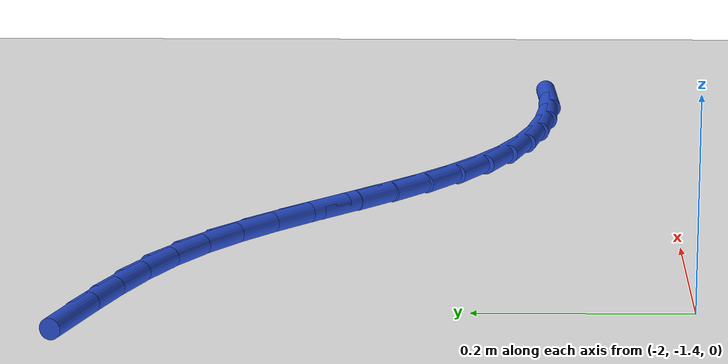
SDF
<sdf version="1.6">
 <world name="default">
  <model name="ground_plane">
   <static>1</static>
   <link name="link">
    <collision name="collision">
     <geometry><plane><normal>0 0 1</normal><size>100 100</size></plane></geometry>
     <surface><friction><ode><mu>100</mu><mu2>50</mu2></ode></friction></surface>
    </collision>
    <visual name="visual">
     <cast_shadows>0</cast_shadows>
     <geometry><plane><normal>0 0 1</normal><size>100 100</size></plane></geometry>
     <material>
      <script><uri>file://media/materials/scripts/gazebo.material</uri><name>Gazebo/WhiteGlow</name></script>
     </material>
    </visual>
   </link>
  </model>
  <model name="line">
   <link name="link_99">
    <pose>-2.0413666108538457 -0.8500817734018158 0.01 0 1.57 -0.36036876573139587</pose>
    <collision name="collision">
     <geometry><cylinder><radius>0.01</radius><length>0.08</length></cylinder></geometry>
    </collision>
    <visual name="visual">
     <material>
      <script><name>Gazebo/Blue</name><uri>file://media/materials/scripts/gazebo.material</uri></script>
     </material>
     <geometry><cylinder><radius>0.01</radius><length>0.08</length></cylinder></geometry>
    </visual>
   </link>
   <link name="link_100">
    <pose>-1.994564461058751 -0.8677179430567928 0.01 0 1.57 -0.3834254542363489</pose>
    <collision name="collision">
     <geometry><cylinder><radius>0.01</radius><length>0.08</length></cylinder></geometry>
    </collision>
    <visual name="visual">
     <material>
      <script><name>Gazebo/Blue</name><uri>file://media/materials/scripts/gazebo.material</uri></script>
     </material>
     <geometry><cylinder><radius>0.01</radius><length>0.08</length></cylinder></geometry>
    </visual>
   </link>
   <link name="link_101">
    <pose>-1.9478679322116075 -0.8865548603801975 0.01 0 1.57 -0.429468967834059</pose>
    <collision name="collision">
     <geometry><cylinder><radius>0.01</radius><length>0.08</length></cylinder></geometry>
    </collision>
    <visual name="visual">
     <material>
      <script><name>Gazebo/Blue</name><uri>file://media/materials/scripts/gazebo.material</uri></script>
     </material>
     <geometry><cylinder><radius>0.01</radius><length>0.08</length></cylinder></geometry>
    </visual>
   </link>
   <link name="link_102">
    <pose>-1.902377567747115 -0.9073884671711115 0.01 0 1.57 -0.5006221867058577</pose>
    <collision name="collision">
     <geometry><cylinder><radius>0.01</radius><length>0.08</length></cylinder></geometry>
    </collision>
    <visual name="visual">
     <material>
      <script><name>Gazebo/Blue</name><uri>file://media/materials/scripts/gazebo.material</uri></script>
     </material>
     <geometry><cylinder><radius>0.01</radius><length>0.08</length></cylinder></geometry>
    </visual>
   </link>
   <link name="link_103">
    <pose>-1.859193911099969 -0.9310147052286172 0.01 0 1.57 -0.5958788762497915</pose>
    <collision name="collision">
     <geometry><cylinder><radius>0.01</radius><length>0.08</length></cylinder></geometry>
    </collision>
    <visual name="visual">
     <material>
      <script><name>Gazebo/Blue</name><uri>file://media/materials/scripts/gazebo.material</uri></script>
     </material>
     <geometry><cylinder><radius>0.01</radius><length>0.08</length></cylinder></geometry>
    </visual>
   </link>
   <link name="link_104">
    <pose>-1.8192646306228215 -0.9580909018978079 0.01 0 1.57 -0.685535855952169</pose>
    <collision name="collision">
     <geometry><cylinder><radius>0.01</radius><length>0.08</length></cylinder></geometry>
    </collision>
    <visual name="visual">
     <material>
      <script><name>Gazebo/Blue</name><uri>file://media/materials/scripts/gazebo.material</uri></script>
     </material>
     <geometry><cylinder><radius>0.01</radius><length>0.08</length></cylinder></geometry>
    </visual>
   </link>
   <link name="link_105">
    <pose>-1.7823987631496432 -0.9882419678333296 0.01 0 1.57 -0.7536825500894747</pose>
    <collision name="collision">
     <geometry><cylinder><radius>0.01</radius><length>0.08</length></cylinder></geometry>
    </collision>
    <visual name="visual">
     <material>
      <script><name>Gazebo/Blue</name><uri>file://media/materials/scripts/gazebo.material</uri></script>
     </material>
     <geometry><cylinder><radius>0.01</radius><length>0.08</length></cylinder></geometry>
    </visual>
   </link>
   <link name="link_106">
    <pose>-1.7478915478844887 -1.0206269445829819 0.01 0 1.57 -0.7992021872696775</pose>
    <collision name="collision">
     <geometry><cylinder><radius>0.01</radius><length>0.08</length></cylinder></geometry>
    </collision>
    <visual name="visual">
     <material>
      <script><name>Gazebo/Blue</name><uri>file://media/materials/scripts/gazebo.material</uri></script>
     </material>
     <geometry><cylinder><radius>0.01</radius><length>0.08</length></cylinder></geometry>
    </visual>
   </link>
   <link name="link_107">
    <pose>-1.715035725386945 -1.0544026081308477 0.01 0 1.57 -0.8217894862395425</pose>
    <collision name="collision">
     <geometry><cylinder><radius>0.01</radius><length>0.08</length></cylinder></geometry>
    </collision>
    <visual name="visual">
     <material>
      <script><name>Gazebo/Blue</name><uri>file://media/materials/scripts/gazebo.material</uri></script>
     </material>
     <geometry><cylinder><radius>0.01</radius><length>0.08</length></cylinder></geometry>
    </visual>
   </link>
   <link name="link_108">
    <pose>-1.683124036216597 -1.088725734461012 0.01 0 1.57 -0.8211891398843412</pose>
    <collision name="collision">
     <geometry><cylinder><radius>0.01</radius><length>0.08</length></cylinder></geometry>
    </collision>
    <visual name="visual">
     <material>
      <script><name>Gazebo/Blue</name><uri>file://media/materials/scripts/gazebo.material</uri></script>
     </material>
     <geometry><cylinder><radius>0.01</radius><length>0.08</length></cylinder></geometry>
    </visual>
   </link>
   <link name="link_109">
    <pose>-1.6514492209330325 -1.1227530995575592 0.01 0 1.57 -0.79682528541398</pose>
    <collision name="collision">
     <geometry><cylinder><radius>0.01</radius><length>0.08</length></cylinder></geometry>
    </collision>
    <visual name="visual">
     <material>
      <script><name>Gazebo/Blue</name><uri>file://media/materials/scripts/gazebo.material</uri></script>
     </material>
     <geometry><cylinder><radius>0.01</radius><length>0.08</length></cylinder></geometry>
    </visual>
   </link>
   <link name="link_110">
    <pose>-1.6193040200958366 -1.1556414794045735 0.01 0 1.57 -0.747789993198343</pose>
    <collision name="collision">
     <geometry><cylinder><radius>0.01</radius><length>0.08</length></cylinder></geometry>
    </collision>
    <visual name="visual">
     <material>
      <script><name>Gazebo/Blue</name><uri>file://media/materials/scripts/gazebo.material</uri></script>
     </material>
     <geometry><cylinder><radius>0.01</radius><length>0.08</length></cylinder></geometry>
    </visual>
   </link>
   <link name="link_111">
    <pose>-1.5859811742645953 -1.1865476499861392 0.01 0 1.57 -0.6732590732783226</pose>
    <collision name="collision">
     <geometry><cylinder><radius>0.01</radius><length>0.08</length></cylinder></geometry>
    </collision>
    <visual name="visual">
     <material>
      <script><name>Gazebo/Blue</name><uri>file://media/materials/scripts/gazebo.material</uri></script>
     </material>
     <geometry><cylinder><radius>0.01</radius><length>0.08</length></cylinder></geometry>
    </visual>
   </link>
   <link name="link_112">
    <pose>-1.5507734239988957 -1.2146283872863401 0.01 0 1.57 -0.5734337206090842</pose>
    <collision name="collision">
     <geometry><cylinder><radius>0.01</radius><length>0.08</length></cylinder></geometry>
    </collision>
    <visual name="visual">
     <material>
      <script><name>Gazebo/Blue</name><uri>file://media/materials/scripts/gazebo.material</uri></script>
     </material>
     <geometry><cylinder><radius>0.01</radius><length>0.08</length></cylinder></geometry>
    </visual>
   </link>
   <link name="link_113">
    <pose>-1.5129735098583246 -1.2390404672892612 0.01 0 1.57 -0.4541753199523095</pose>
    <collision name="collision">
     <geometry><cylinder><radius>0.01</radius><length>0.08</length></cylinder></geometry>
    </collision>
    <visual name="visual">
     <material>
      <script><name>Gazebo/Blue</name><uri>file://media/materials/scripts/gazebo.material</uri></script>
     </material>
     <geometry><cylinder><radius>0.01</radius><length>0.08</length></cylinder></geometry>
    </visual>
   </link>
   <link name="link_114">
    <pose>-1.472017440064246 -1.2590358390488339 0.01 0 1.57 -0.33880938456993753</pose>
    <collision name="collision">
     <geometry><cylinder><radius>0.01</radius><length>0.08</length></cylinder></geometry>
    </collision>
    <visual name="visual">
     <material>
      <script><name>Gazebo/Blue</name><uri>file://media/materials/scripts/gazebo.material</uri></script>
     </material>
     <geometry><cylinder><radius>0.01</radius><length>0.08</length></cylinder></geometry>
    </visual>
   </link>
   <link name="link_115">
    <pose>-1.4282394128113227 -1.2744631214885411 0.01 0 1.57 -0.2338578049598133</pose>
    <collision name="collision">
     <geometry><cylinder><radius>0.01</radius><length>0.08</length></cylinder></geometry>
    </collision>
    <visual name="visual">
     <material>
      <script><name>Gazebo/Blue</name><uri>file://media/materials/scripts/gazebo.material</uri></script>
     </material>
     <geometry><cylinder><radius>0.01</radius><length>0.08</length></cylinder></geometry>
    </visual>
   </link>
   <link name="link_116">
    <pose>-1.382320937997426 -1.285401653574186 0.01 0 1.57 -0.13696067001255066</pose>
    <collision name="collision">
     <geometry><cylinder><radius>0.01</radius><length>0.08</length></cylinder></geometry>
    </collision>
    <visual name="visual">
     <material>
      <script><name>Gazebo/Blue</name><uri>file://media/materials/scripts/gazebo.material</uri></script>
     </material>
     <geometry><cylinder><radius>0.01</radius><length>0.08</length></cylinder></geometry>
    </visual>
   </link>
   <link name="link_117">
    <pose>-1.33494427512014 -1.2919312722325507 0.01 0 1.57 -0.04566757708014233</pose>
    <collision name="collision">
     <geometry><cylinder><radius>0.01</radius><length>0.08</length></cylinder></geometry>
    </collision>
    <visual name="visual">
     <material>
      <script><name>Gazebo/Blue</name><uri>file://media/materials/scripts/gazebo.material</uri></script>
     </material>
     <geometry><cylinder><radius>0.01</radius><length>0.08</length></cylinder></geometry>
    </visual>
   </link>
   <link name="link_118">
    <pose>-1.2867916836770468 -1.294131814390419 0.01 0 1.57 0.04243784627135929</pose>
    <collision name="collision">
     <geometry><cylinder><radius>0.01</radius><length>0.08</length></cylinder></geometry>
    </collision>
    <visual name="visual">
     <material>
      <script><name>Gazebo/Blue</name><uri>file://media/materials/scripts/gazebo.material</uri></script>
     </material>
     <geometry><cylinder><radius>0.01</radius><length>0.08</length></cylinder></geometry>
    </visual>
   </link>
  </model>
 </world>
</sdf>
